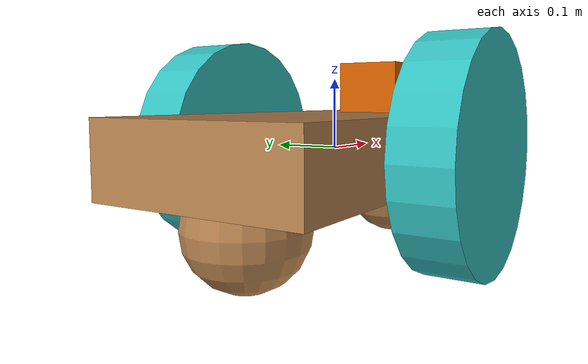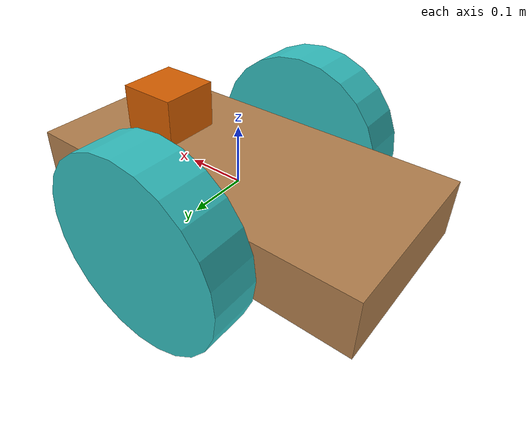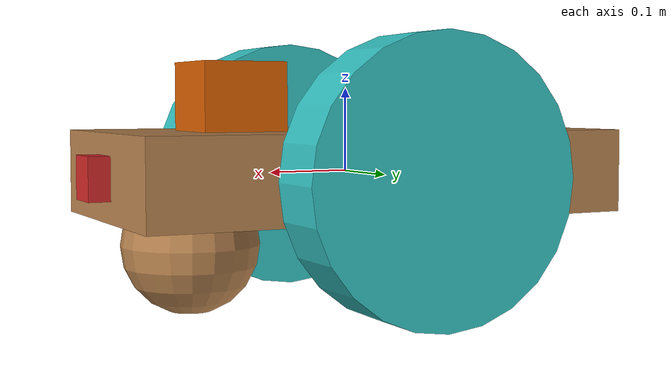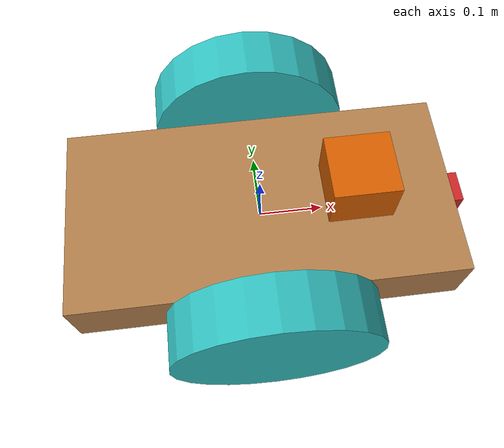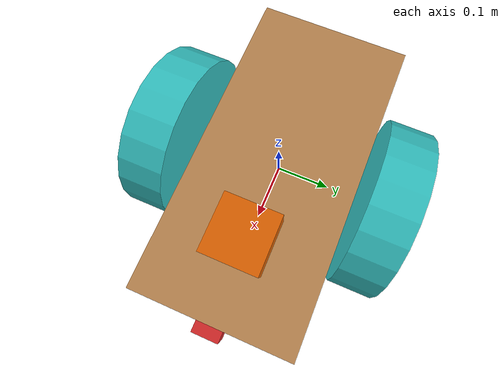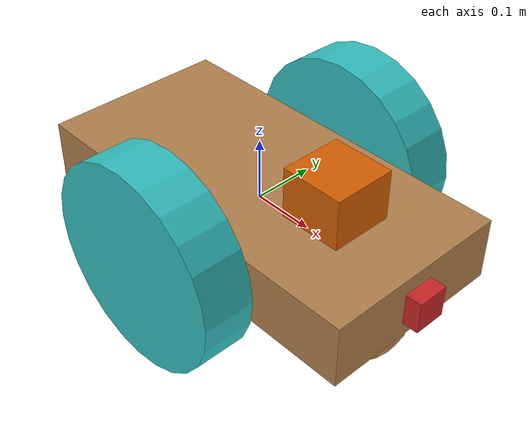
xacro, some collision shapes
<robot name="my_robot" xmlns:xacro="http://www.ros.org/wiki/xacro">

  <xacro:include filename="$(find my_robot)/urdf/my_robot.gazebo" />

  <link name="robot_footprint"></link>

  <joint name="robot_footprint_joint" type="fixed">
    <origin xyz="0 0 0" rpy="0 0 0" />
    <parent link="robot_footprint"/>
    <child link="chassis" />
  </joint>

  <link name='chassis'>
    <pose>0 0 0.2 0 0 0</pose>

    <inertial>
      <mass value="15.0"/>
      <origin xyz="0.0 0 0" rpy=" 0 0 0"/>
      <inertia
          ixx="0.1" ixy="0" ixz="0"
          iyy="0.1" iyz="0"
          izz="0.1"
      />
    </inertial>

    <collision name='collision'>
      <origin xyz="0 0 0" rpy=" 0 0 0"/>
      <geometry>
        <box size=".6 .3 .1"/>
      </geometry>
    </collision>

    <visual name='chassis_visual'>
      <origin xyz="0 0 0" rpy=" 0 0 0"/>
      <geometry>
        <box size=".6 .3 .1"/>
      </geometry>
    </visual>

    <collision name='back_caster_collision'>
      <origin xyz="-0.2 0 -0.08" rpy=" 0 0 0"/>
      <geometry>
        <sphere radius="0.0799"/>
      </geometry>
    </collision>

    <visual name='back_caster_visual'>
      <origin xyz="-0.2 0 -0.08" rpy=" 0 0 0"/>
      <geometry>
        <sphere radius="0.0799"/>
      </geometry>
    </visual>

    <collision name='front_caster_collision'>
      <origin xyz="0.2 0 -0.08" rpy=" 0 0 0"/>
      <geometry>
        <sphere radius="0.0799"/>
      </geometry>
    </collision>

    <visual name='front_caster_visual'>
      <origin xyz="0.2 0 -0.08" rpy=" 0 0 0"/>
      <geometry>
        <sphere radius="0.0799"/>
      </geometry>
    </visual>

  </link>

  <link name="left_wheel">
    <inertial>
      <mass value="5.0"/>
      <origin xyz="0 0 0" rpy=" 0 0 0"/>
      <inertia
          ixx="0.1" ixy="0" ixz="0"
          iyy="0.1" iyz="0"
          izz="0.1"
      />
    </inertial>

    <collision>
      <origin xyz="0 0 0" rpy="0 1.5707 1.5707"/>
      <geometry>
        <cylinder radius="0.16" length="0.08"/>
      </geometry>
    </collision>

    <visual>
      <origin xyz="0 0 0" rpy="0 1.5707 1.5707"/>
      <geometry>
        <cylinder radius="0.16" length="0.08"/>
      </geometry>
    </visual>

  </link>

  <link name="right_wheel">
    <inertial>
      <mass value="5.0"/>
      <origin xyz="0 0 0" rpy=" 0 0 0"/>
      <inertia
          ixx="0.1" ixy="0" ixz="0"
          iyy="0.1" iyz="0"
          izz="0.1"
      />
    </inertial>

    <collision>
      <origin xyz="0 0 0" rpy="0 1.5707 1.5707"/>
      <geometry>
        <cylinder radius="0.16" length="0.08"/>
      </geometry>
    </collision>

    <visual>
      <origin xyz="0 0 0" rpy="0 1.5707 1.5707"/>
      <geometry>
        <cylinder radius="0.16" length="0.08"/>
      </geometry>
    </visual>

  </link>

  <joint type="continuous" name="left_wheel_hinge">
    <origin xyz="0 0.2 0" rpy="0 0 0"/>
    <child link="left_wheel"/>
    <parent link="chassis"/>
    <axis xyz="0 1 0" rpy="0 0 0"/>
    <limit effort="10000" velocity="1000"/>
    <dynamics damping="1.0" friction="1.0"/>
  </joint>

  <joint type="continuous" name="right_wheel_hinge">
    <origin xyz="0 -0.2 0" rpy="0 0 0"/>
    <child link="right_wheel"/>
    <parent link="chassis"/>
    <axis xyz="0 -1 0" rpy="0 0 0"/>
    <limit effort="10000" velocity="1000"/>
    <dynamics damping="1.0" friction="1.0"/>
  </joint>

  <link name="camera">
    <inertial>
      <mass value="0.1"/>
      <origin xyz="0 0 0" rpy=" 0 0 0"/>
      <inertia
          ixx="1e-6" ixy="0" ixz="0"
          iyy="1e-6" iyz="0"
          izz="1e-6"
      />
    </inertial>

    <collision>
      <origin xyz="0 0 0" rpy="0 0 0"/>
      <geometry>
        <box size="0.05 0.05 0.05"/>
      </geometry>
    </collision>

    <visual>
      <origin xyz="0 0 0" rpy="0 0 0"/>
      <geometry>
        <box size="0.05 0.05 0.05"/>
      </geometry>
    </visual>
  </link>

  <joint type="fixed" name="camera_joint">
    <origin xyz="0.3 0 0" rpy="0 0 0"/>
    <child link="camera"/>
    <parent link="chassis"/>
    <axis xyz="0 1 0" rpy="0 0 0"/>
  </joint>

  <link name="hokuyo">
    <inertial>
      <mass value="1e-5"/>
      <origin xyz="0 0 0" rpy=" 0 0 0"/>
      <inertia
          ixx="1e-6" ixy="0" ixz="0"
          iyy="1e-6" iyz="0"
          izz="1e-6"
      />
    </inertial>

    <collision>
      <origin xyz="0 0 0" rpy="0 0 0"/>
      <geometry>
        <box size="0.1 0.1 0.1"/>
      </geometry>
    </collision>

    <visual>
      <origin rpy="0 0 0" xyz="0 0 0"/>
      <geometry>
        <mesh filename="package://my_robot/meshes/hokuyo.dae"/>
      </geometry>
    </visual>

  </link>

  <joint type="fixed" name="hokuyo_joint">
    <origin xyz="0.15 0 0.08" rpy="0 0 0"/>
    <child link="hokuyo"/>
    <parent link="chassis"/>
    <axis xyz="0 1 0" rpy="0 0 0"/>
  </joint>

  <gazebo reference="left_wheel">
      <material>Gazebo/TurquoiseGlow</material>
  </gazebo>
  <gazebo reference="right_wheel">
      <material>Gazebo/TurquoiseGlow</material>
  </gazebo>
  <gazebo reference="chassis">
      <material>Gazebo/Wood</material>
  </gazebo>
  <gazebo reference="camera">
      <material>Gazebo/Red</material>
  </gazebo>

</robot>
